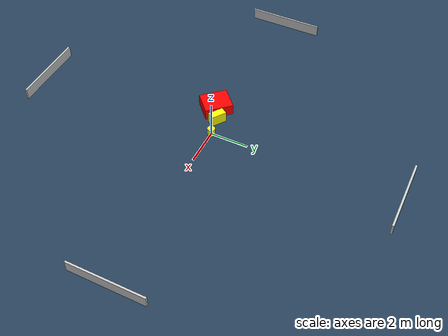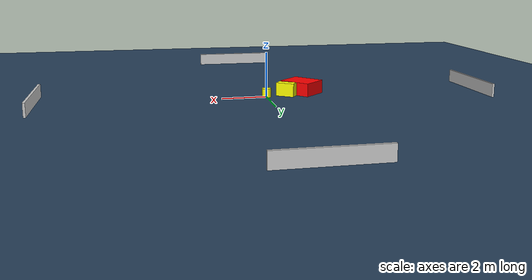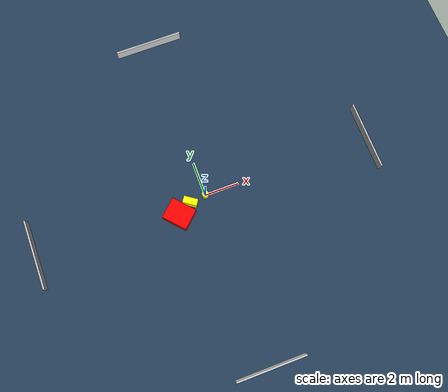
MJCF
<?xml version="1.0" ?>
<mujoco model="generated_environment">
  <option timestep="0.01" integrator="RK4" cone="elliptic"/>
  <default>
    <geom density="1"/>
  </default>
  <asset>
    <texture builtin="gradient" height="3072" name="skybox" rgb1="0.3 0.5 0.7" rgb2="0 0 0" type="skybox" width="512"/>
    <texture builtin="checker" height="300" name="groundplane" rgb1="0.2 0.3 0.4" rgb2="0.1 0.2 0.3" type="2d" width="300"/>
    <material name="groundplane" reflectance="0.2" texrepeat="5 5" texture="groundplane"/>
  </asset>
  <worldbody>
    <light dir="0 0 -1" directional="true" pos="0 0 1.5"/>
    <geom condim="3" friction="0.5 0.005 0.001" material="groundplane" name="floor" pos="0 0 0" size="0 0 0.05" type="plane"/>
    <body name="walls">
      <geom name="wall_1" condim="4" pos="-10.0 0.0 0.3" rgba="0.800000011920929 0.800000011920929 0.800000011920929 1.0" size="0.05 2.0 0.3" type="box"/>
      <geom name="wall_2" condim="4" pos="10.0 0.0 0.3" rgba="0.800000011920929 0.800000011920929 0.800000011920929 1.0" size="0.05 2.0 0.3" type="box"/>
      <geom name="wall_3" condim="4" pos="0.0 -10.0 0.3" rgba="0.800000011920929 0.800000011920929 0.800000011920929 1.0" size="2.0 0.05 0.3" type="box"/>
      <geom name="wall_4" condim="4" pos="0.0 10.0 0.3" rgba="0.800000011920929 0.800000011920929 0.800000011920929 1.0" size="2.0 0.05 0.3" type="box"/>
    </body>
    <body name="robot">
      <joint name="joint_x" type="slide" pos="0 0 0" axis="1 0 0"/>
      <joint name="joint_y" type="slide" pos="0 0 0" axis="0 1 0"/>
      <geom name="robot" type="cylinder" pos="0.0 0.0 0.2" size="0.2 0.2 0.0" mass="5.0" friction="1.0 0.005 0.0001" condim="4" rgba="1.0 1.0 0.0 1.0"/>
    </body>
    <body name="obstacle_1_movable">
      <geom name="obstacle_1_movable" condim="4" pos="-0.9492532915813788 -0.12636502653905382 0.3" euler="0 0 55.18257122314674" friction="0.0 0.005 0.001" rgba="1.0 1.0 0.0 1.0" size="0.20069214067297014 0.4141277985237519 0.3" type="box" mass="0.1"/>
      <joint type="free"/>
    </body>
    <body name="obstacle_2_static">
      <geom name="obstacle_2_static" condim="4" pos="-1.77527997072034 -0.5956109304838609 0.3" euler="0 0 42.288550258544426" friction="0.0 0.005 0.001" rgba="1.0 0.0 0.0 1.0" size="0.6223459096696196 0.7445683079523726 0.3" type="box"/>
    </body>
  </worldbody>
  <actuator>
    <motor name="actuator_x" joint="joint_x" gear="1" ctrlrange="-1 1"/>
    <motor name="actuator_y" joint="joint_y" gear="1" ctrlrange="-1 1"/>
  </actuator>
</mujoco>
